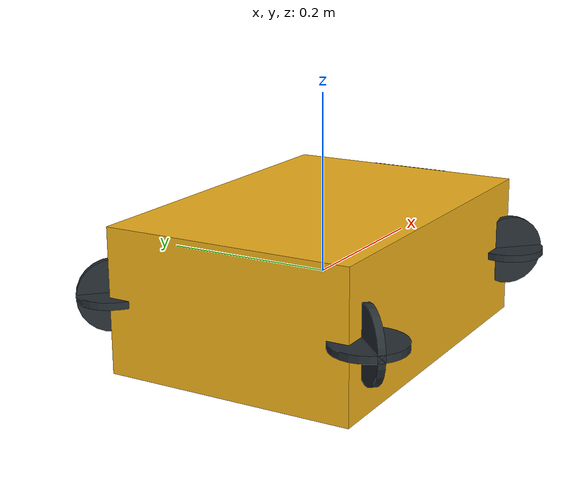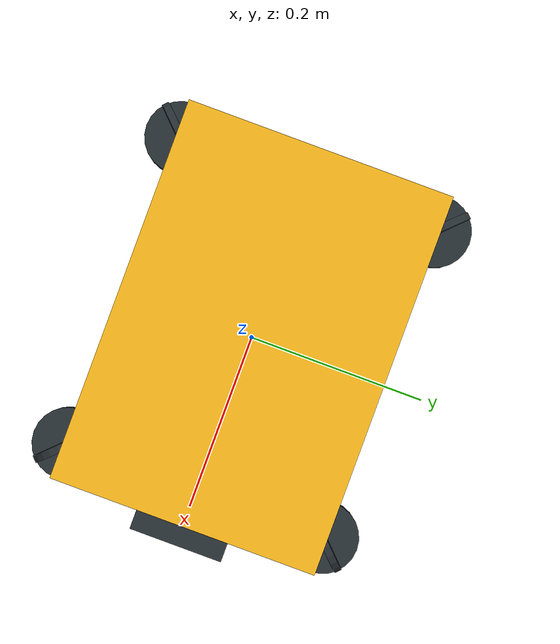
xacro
<?xml version='1.0' encoding='utf-8'?>
<robot xmlns:xacro="http://ros.org/wiki/xacro" name="lab_rov">
  <xacro:arg name="is_ignition" default="true" />
  <xacro:arg name="model_name" default="lab_rov" />
  <xacro:include filename="$(find robot_lab_robots)/description_common/urdf/oakd_camera.xacro" />
  <material name="dark_grey">
    <color rgba=".15 .18 .2 1" />
  </material>
  <material name="rov_yellow">
    <color rgba=".95 .7 .1 1" />
  </material>
  <link name="base_link">
    <inertial>
      <origin xyz="0 0 -.025" rpy="0 0 0" />
      <mass value="18.4" />
      <inertia ixx=".159466667" iyy=".284586667" izz=".365546667" ixy="0" ixz="0" iyz="0" />
    </inertial>
    <visual name="hull_visual">
      <geometry>
        <box size=".4 .28 .16" />
      </geometry>
      <material name="rov_yellow" />
    </visual>
    <collision name="hull_collision">
      <geometry>
        <box size=".4 .28 .16" />
      </geometry>
    </collision>
  </link>
  <xacro:oakd name="oakd" parent_link="base_link" model="pro" mesh_visual="false" rate="5">
    <origin xyz=".21 0 .06" rpy="0 0 0" />
  </xacro:oakd>
  <gazebo reference="base_link">
    <sensor name="marine_imu" type="imu">
      <always_on>true</always_on>
      <update_rate>50</update_rate>
      <topic>/marine/imu</topic>
      <gz_frame_id>base_link</gz_frame_id>
    </sensor>
    <!-- Fortress DVL/pressure/sonar emulation runs in marine_sensors.py. -->
  </gazebo>
  <link name="thruster_0_link">
    <inertial>
      <mass value=".01" />
      <inertia ixx=".000004" iyy=".000004" izz=".000004" ixy="0" ixz="0" iyz="0" />
    </inertial>
    <visual>
      <origin xyz="0 0 0" rpy="0 1.57079632679 0" />
      <geometry>
        <cylinder radius=".04" length=".008" />
      </geometry>
      <material name="dark_grey" />
    </visual>
  </link>
  <joint name="thruster_0_joint" type="continuous">
    <parent link="base_link" />
    <child link="thruster_0_link" />
    <origin xyz="0.18 0.15 0" rpy="0 0 -0.7853981633974483" />
    <axis xyz="1 0 0" />
    <limit effort="2" velocity="300" />
  </joint>
  <gazebo>
    <plugin filename="ignition-gazebo-thruster-system" name="ignition::gazebo::systems::Thruster">
      <namespace>$(arg model_name)</namespace>
      <joint_name>thruster_0_joint</joint_name>
      <thrust_coefficient>0.0044</thrust_coefficient>
      <fluid_density>1025</fluid_density>
      <propeller_diameter>0.08</propeller_diameter>
      <min_thrust_cmd>-12</min_thrust_cmd>
      <max_thrust_cmd>12</max_thrust_cmd>
      <velocity_control>true</velocity_control>
    </plugin>
  </gazebo>
  <link name="thruster_1_link">
    <inertial>
      <mass value=".01" />
      <inertia ixx=".000004" iyy=".000004" izz=".000004" ixy="0" ixz="0" iyz="0" />
    </inertial>
    <visual>
      <origin xyz="0 0 0" rpy="0 1.57079632679 0" />
      <geometry>
        <cylinder radius=".04" length=".008" />
      </geometry>
      <material name="dark_grey" />
    </visual>
  </link>
  <joint name="thruster_1_joint" type="continuous">
    <parent link="base_link" />
    <child link="thruster_1_link" />
    <origin xyz="0.18 -0.15 0" rpy="0 0 0.7853981633974483" />
    <axis xyz="1 0 0" />
    <limit effort="2" velocity="300" />
  </joint>
  <gazebo>
    <plugin filename="ignition-gazebo-thruster-system" name="ignition::gazebo::systems::Thruster">
      <namespace>$(arg model_name)</namespace>
      <joint_name>thruster_1_joint</joint_name>
      <thrust_coefficient>0.0044</thrust_coefficient>
      <fluid_density>1025</fluid_density>
      <propeller_diameter>0.08</propeller_diameter>
      <min_thrust_cmd>-12</min_thrust_cmd>
      <max_thrust_cmd>12</max_thrust_cmd>
      <velocity_control>true</velocity_control>
    </plugin>
  </gazebo>
  <link name="thruster_2_link">
    <inertial>
      <mass value=".01" />
      <inertia ixx=".000004" iyy=".000004" izz=".000004" ixy="0" ixz="0" iyz="0" />
    </inertial>
    <visual>
      <origin xyz="0 0 0" rpy="0 1.57079632679 0" />
      <geometry>
        <cylinder radius=".04" length=".008" />
      </geometry>
      <material name="dark_grey" />
    </visual>
  </link>
  <joint name="thruster_2_joint" type="continuous">
    <parent link="base_link" />
    <child link="thruster_2_link" />
    <origin xyz="-0.18 0.15 0" rpy="0 0 0.7853981633974483" />
    <axis xyz="1 0 0" />
    <limit effort="2" velocity="300" />
  </joint>
  <gazebo>
    <plugin filename="ignition-gazebo-thruster-system" name="ignition::gazebo::systems::Thruster">
      <namespace>$(arg model_name)</namespace>
      <joint_name>thruster_2_joint</joint_name>
      <thrust_coefficient>0.0044</thrust_coefficient>
      <fluid_density>1025</fluid_density>
      <propeller_diameter>0.08</propeller_diameter>
      <min_thrust_cmd>-12</min_thrust_cmd>
      <max_thrust_cmd>12</max_thrust_cmd>
      <velocity_control>true</velocity_control>
    </plugin>
  </gazebo>
  <link name="thruster_3_link">
    <inertial>
      <mass value=".01" />
      <inertia ixx=".000004" iyy=".000004" izz=".000004" ixy="0" ixz="0" iyz="0" />
    </inertial>
    <visual>
      <origin xyz="0 0 0" rpy="0 1.57079632679 0" />
      <geometry>
        <cylinder radius=".04" length=".008" />
      </geometry>
      <material name="dark_grey" />
    </visual>
  </link>
  <joint name="thruster_3_joint" type="continuous">
    <parent link="base_link" />
    <child link="thruster_3_link" />
    <origin xyz="-0.18 -0.15 0" rpy="0 0 -0.7853981633974483" />
    <axis xyz="1 0 0" />
    <limit effort="2" velocity="300" />
  </joint>
  <gazebo>
    <plugin filename="ignition-gazebo-thruster-system" name="ignition::gazebo::systems::Thruster">
      <namespace>$(arg model_name)</namespace>
      <joint_name>thruster_3_joint</joint_name>
      <thrust_coefficient>0.0044</thrust_coefficient>
      <fluid_density>1025</fluid_density>
      <propeller_diameter>0.08</propeller_diameter>
      <min_thrust_cmd>-12</min_thrust_cmd>
      <max_thrust_cmd>12</max_thrust_cmd>
      <velocity_control>true</velocity_control>
    </plugin>
  </gazebo>
  <link name="thruster_4_link">
    <inertial>
      <mass value=".01" />
      <inertia ixx=".000004" iyy=".000004" izz=".000004" ixy="0" ixz="0" iyz="0" />
    </inertial>
    <visual>
      <origin xyz="0 0 0" rpy="0 0 0" />
      <geometry>
        <cylinder radius=".04" length=".008" />
      </geometry>
      <material name="dark_grey" />
    </visual>
  </link>
  <joint name="thruster_4_joint" type="continuous">
    <parent link="base_link" />
    <child link="thruster_4_link" />
    <origin xyz="0.18 0.15 0" rpy="0 0 0.0" />
    <axis xyz="0 0 1" />
    <limit effort="2" velocity="300" />
  </joint>
  <gazebo>
    <plugin filename="ignition-gazebo-thruster-system" name="ignition::gazebo::systems::Thruster">
      <namespace>$(arg model_name)</namespace>
      <joint_name>thruster_4_joint</joint_name>
      <thrust_coefficient>0.0044</thrust_coefficient>
      <fluid_density>1025</fluid_density>
      <propeller_diameter>0.08</propeller_diameter>
      <min_thrust_cmd>-12</min_thrust_cmd>
      <max_thrust_cmd>12</max_thrust_cmd>
      <velocity_control>true</velocity_control>
    </plugin>
  </gazebo>
  <link name="thruster_5_link">
    <inertial>
      <mass value=".01" />
      <inertia ixx=".000004" iyy=".000004" izz=".000004" ixy="0" ixz="0" iyz="0" />
    </inertial>
    <visual>
      <origin xyz="0 0 0" rpy="0 0 0" />
      <geometry>
        <cylinder radius=".04" length=".008" />
      </geometry>
      <material name="dark_grey" />
    </visual>
  </link>
  <joint name="thruster_5_joint" type="continuous">
    <parent link="base_link" />
    <child link="thruster_5_link" />
    <origin xyz="0.18 -0.15 0" rpy="0 0 0.0" />
    <axis xyz="0 0 1" />
    <limit effort="2" velocity="300" />
  </joint>
  <gazebo>
    <plugin filename="ignition-gazebo-thruster-system" name="ignition::gazebo::systems::Thruster">
      <namespace>$(arg model_name)</namespace>
      <joint_name>thruster_5_joint</joint_name>
      <thrust_coefficient>0.0044</thrust_coefficient>
      <fluid_density>1025</fluid_density>
      <propeller_diameter>0.08</propeller_diameter>
      <min_thrust_cmd>-12</min_thrust_cmd>
      <max_thrust_cmd>12</max_thrust_cmd>
      <velocity_control>true</velocity_control>
    </plugin>
  </gazebo>
  <link name="thruster_6_link">
    <inertial>
      <mass value=".01" />
      <inertia ixx=".000004" iyy=".000004" izz=".000004" ixy="0" ixz="0" iyz="0" />
    </inertial>
    <visual>
      <origin xyz="0 0 0" rpy="0 0 0" />
      <geometry>
        <cylinder radius=".04" length=".008" />
      </geometry>
      <material name="dark_grey" />
    </visual>
  </link>
  <joint name="thruster_6_joint" type="continuous">
    <parent link="base_link" />
    <child link="thruster_6_link" />
    <origin xyz="-0.18 0.15 0" rpy="0 0 0.0" />
    <axis xyz="0 0 1" />
    <limit effort="2" velocity="300" />
  </joint>
  <gazebo>
    <plugin filename="ignition-gazebo-thruster-system" name="ignition::gazebo::systems::Thruster">
      <namespace>$(arg model_name)</namespace>
      <joint_name>thruster_6_joint</joint_name>
      <thrust_coefficient>0.0044</thrust_coefficient>
      <fluid_density>1025</fluid_density>
      <propeller_diameter>0.08</propeller_diameter>
      <min_thrust_cmd>-12</min_thrust_cmd>
      <max_thrust_cmd>12</max_thrust_cmd>
      <velocity_control>true</velocity_control>
    </plugin>
  </gazebo>
  <link name="thruster_7_link">
    <inertial>
      <mass value=".01" />
      <inertia ixx=".000004" iyy=".000004" izz=".000004" ixy="0" ixz="0" iyz="0" />
    </inertial>
    <visual>
      <origin xyz="0 0 0" rpy="0 0 0" />
      <geometry>
        <cylinder radius=".04" length=".008" />
      </geometry>
      <material name="dark_grey" />
    </visual>
  </link>
  <joint name="thruster_7_joint" type="continuous">
    <parent link="base_link" />
    <child link="thruster_7_link" />
    <origin xyz="-0.18 -0.15 0" rpy="0 0 0.0" />
    <axis xyz="0 0 1" />
    <limit effort="2" velocity="300" />
  </joint>
  <gazebo>
    <plugin filename="ignition-gazebo-thruster-system" name="ignition::gazebo::systems::Thruster">
      <namespace>$(arg model_name)</namespace>
      <joint_name>thruster_7_joint</joint_name>
      <thrust_coefficient>0.0044</thrust_coefficient>
      <fluid_density>1025</fluid_density>
      <propeller_diameter>0.08</propeller_diameter>
      <min_thrust_cmd>-12</min_thrust_cmd>
      <max_thrust_cmd>12</max_thrust_cmd>
      <velocity_control>true</velocity_control>
    </plugin>
  </gazebo>
  <gazebo>
    <plugin filename="ignition-gazebo-hydrodynamics-system" name="ignition::gazebo::systems::Hydrodynamics">
      <link_name>base_link</link_name>
      <default_current>0.1 0.0 0.0</default_current>
      <xDotU>3</xDotU>
      <yDotV>5</yDotV>
      <zDotW>7</zDotW>
      <kDotP>0.04</kDotP>
      <mDotQ>0.08</mDotQ>
      <nDotR>0.08</nDotR>
      <xU>-8</xU>
      <yV>-12</yV>
      <zW>-15</zW>
      <kP>-0.2</kP>
      <mQ>-0.3</mQ>
      <nR>-0.3</nR>
      <xUabsU>-20</xUabsU>
      <yVabsV>-30</yVabsV>
      <zWabsW>-35</zWabsW>
      <kPabsP>-0.3</kPabsP>
      <mQabsQ>-0.5</mQabsQ>
      <nRabsR>-0.5</nRabsR>
    </plugin>
    <plugin filename="ignition-gazebo-odometry-publisher-system" name="ignition::gazebo::systems::OdometryPublisher">
      <odom_frame>map</odom_frame>
      <robot_base_frame>base_link</robot_base_frame>
      <odom_topic>/marine/odometry</odom_topic>
      <tf_topic>/marine/truth_pose</tf_topic>
      <odom_publish_frequency>50</odom_publish_frequency>
      <dimensions>3</dimensions>
    </plugin>
    <plugin filename="ignition-gazebo-joint-state-publisher-system" name="ignition::gazebo::systems::JointStatePublisher">
      <topic>/marine/joint_states</topic>
    </plugin>
  </gazebo>
</robot>

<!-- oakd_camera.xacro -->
<robot xmlns:xacro="http://ros.org/wiki/xacro">

  <xacro:macro name="dummy_inertial">
    <inertial>
      <mass value="0.0001"/>
      <inertia ixx="0.000001" ixy="0.0" ixz="0.0"
               iyy="0.000001" iyz="0.0" izz="0.000001"/>
    </inertial>
  </xacro:macro>

  <!-- Reusable OAK-D Pro / RGBD camera macro -->
  <xacro:macro name="oakd" params="name:=oakd parent_link *origin model:=pro mesh_visual:=true rate:=30">
    <xacro:property name="baseline" value="0.075"/>
    <xacro:property name="oakd_pi" value="3.1415926535897931"/>
    <xacro:property name="base_frame" value="${name}_link"/>

    <joint name="${name}_joint" type="fixed">
      <parent link="${parent_link}"/>
      <child link="${base_frame}"/>
      <xacro:insert_block name="origin"/>
    </joint>

    <link name="${base_frame}">
      <visual>
        <geometry>
          <xacro:if value="${mesh_visual}">
            <mesh filename="package://robot_lab_robots/description_common/meshes/oakd_${model}.stl" scale="1 1 1"/>
          </xacro:if>
          <xacro:unless value="${mesh_visual}">
            <box size="0.0225 0.097 0.03"/>
          </xacro:unless>
        </geometry>
        <material name="dark_grey"/>
      </visual>
      <collision>
        <origin xyz="-0.011 0 -0.005" rpy="0 0 0"/>
        <geometry>
          <box size="0.0225 0.097 0.03"/>
        </geometry>
      </collision>
      <inertial>
        <mass value="0.061"/>
        <inertia ixx="0.00000202475" ixy="0.0" ixz="0.0"
                 iyy="0.00001527320" iyz="0.0" izz="0.00001605536"/>
      </inertial>
    </link>

    <link name="${name}_rgb_camera_frame">
      <xacro:dummy_inertial/>
    </link>

    <joint name="${name}_rgb_camera_joint" type="fixed">
      <parent link="${base_frame}"/>
      <child link="${name}_rgb_camera_frame"/>
      <origin xyz="0 0 0" rpy="0 0 0"/>
    </joint>

    <link name="${name}_rgb_camera_optical_frame">
      <xacro:dummy_inertial/>
    </link>

    <joint name="${name}_rgb_camera_optical_joint" type="fixed">
      <parent link="${name}_rgb_camera_frame"/>
      <child link="${name}_rgb_camera_optical_frame"/>
      <origin xyz="0 0 0" rpy="${-oakd_pi/2} 0 ${-oakd_pi/2}"/>
    </joint>

    <link name="${name}_left_camera_frame">
      <xacro:dummy_inertial/>
    </link>

    <joint name="${name}_left_camera_joint" type="fixed">
      <parent link="${base_frame}"/>
      <child link="${name}_left_camera_frame"/>
      <origin xyz="0 ${baseline/2} 0" rpy="0 0 0"/>
    </joint>

    <link name="${name}_left_camera_optical_frame">
      <xacro:dummy_inertial/>
    </link>

    <joint name="${name}_left_camera_optical_joint" type="fixed">
      <parent link="${name}_left_camera_frame"/>
      <child link="${name}_left_camera_optical_frame"/>
      <origin xyz="0 0 0" rpy="${-oakd_pi/2} 0 ${-oakd_pi/2}"/>
    </joint>

    <link name="${name}_right_camera_frame">
      <xacro:dummy_inertial/>
    </link>

    <joint name="${name}_right_camera_joint" type="fixed">
      <parent link="${base_frame}"/>
      <child link="${name}_right_camera_frame"/>
      <origin xyz="0 ${-baseline/2} 0" rpy="0 0 0"/>
    </joint>

    <link name="${name}_right_camera_optical_frame">
      <xacro:dummy_inertial/>
    </link>

    <joint name="${name}_right_camera_optical_joint" type="fixed">
      <parent link="${name}_right_camera_frame"/>
      <child link="${name}_right_camera_optical_frame"/>
      <origin xyz="0 0 0" rpy="${-oakd_pi/2} 0 ${-oakd_pi/2}"/>
    </joint>

    <link name="${name}_imu_frame">
      <xacro:dummy_inertial/>
    </link>

    <joint name="${name}_imu_joint" type="fixed">
      <parent link="${base_frame}"/>
      <child link="${name}_imu_frame"/>
      <origin xyz="0 0 0" rpy="${-oakd_pi/2} 0 ${-oakd_pi/2}"/>
    </joint>

    <gazebo reference="${name}_rgb_camera_frame">
      <sensor name="rgbd_camera" type="rgbd_camera">
        <always_on>1</always_on>
        <update_rate>${rate}</update_rate>
        <visualize>true</visualize>
        <camera>
          <horizontal_fov>1.25</horizontal_fov>
          <image>
            <width>320</width>
            <height>240</height>
          </image>
          <clip>
            <near>0.3</near>
            <far>100</far>
          </clip>
          <optical_frame_id>${name}_rgb_camera_optical_frame</optical_frame_id>
        </camera>
      </sensor>
      <material>Gazebo/DarkGrey</material>
    </gazebo>

    <gazebo reference="${name}_joint">
      <preserveFixedJoint>true</preserveFixedJoint>
    </gazebo>
    <gazebo reference="${name}_rgb_camera_joint">
      <preserveFixedJoint>true</preserveFixedJoint>
    </gazebo>
    <gazebo reference="${name}_rgb_camera_optical_joint">
      <preserveFixedJoint>true</preserveFixedJoint>
    </gazebo>
    <gazebo reference="${name}_left_camera_joint">
      <preserveFixedJoint>true</preserveFixedJoint>
    </gazebo>
    <gazebo reference="${name}_left_camera_optical_joint">
      <preserveFixedJoint>true</preserveFixedJoint>
    </gazebo>
    <gazebo reference="${name}_right_camera_joint">
      <preserveFixedJoint>true</preserveFixedJoint>
    </gazebo>
    <gazebo reference="${name}_right_camera_optical_joint">
      <preserveFixedJoint>true</preserveFixedJoint>
    </gazebo>
    <gazebo reference="${name}_imu_joint">
      <preserveFixedJoint>true</preserveFixedJoint>
    </gazebo>
  </xacro:macro>

</robot>
